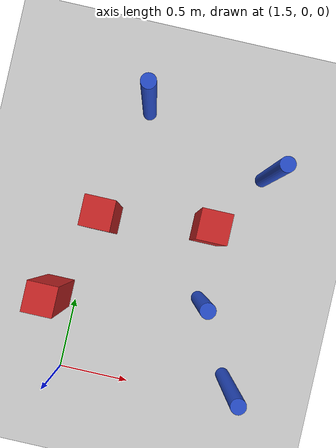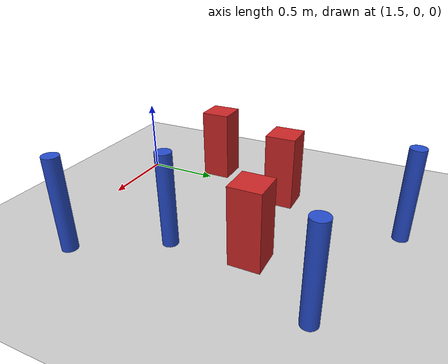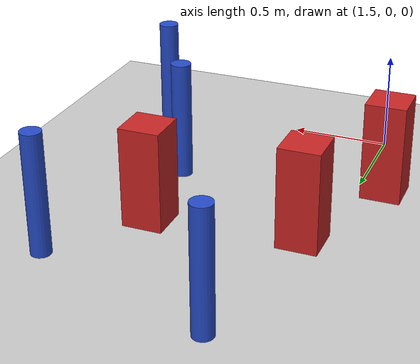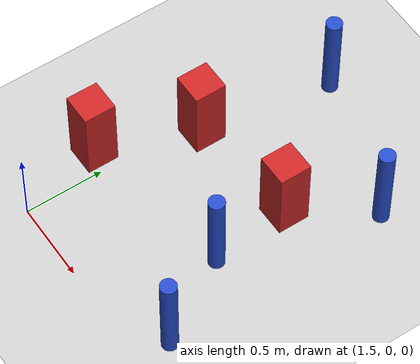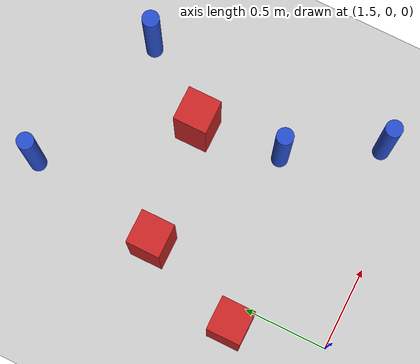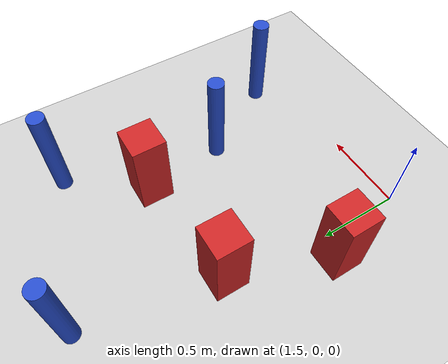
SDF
<sdf version="1.6">
 <world name="default">
  <model name="ground_plane">
   <static>1</static>
   <link name="link">
    <collision name="collision">
     <geometry><plane><normal>0 0 1</normal><size>100 100</size></plane></geometry>
     <surface><friction><ode><mu>100</mu><mu2>50</mu2></ode></friction></surface>
    </collision>
    <visual name="visual">
     <cast_shadows>0</cast_shadows>
     <geometry><plane><normal>0 0 1</normal><size>100 100</size></plane></geometry>
     <material>
      <ambient>1.0 1.0 1.0 1.0</ambient>
      <diffuse>0.8 0.8 0.8 1.0</diffuse>
      <specular>0.01 0.01 0.01 1.000000</specular>
     </material>
    </visual>
   </link>
  </model>
  <model name="square_post_obstacle0">
   <static>true</static>
   <pose>1.59521154931 1.13567530019 8.22691968438e-08 7.2212513382e-06 -7.54495500217e-07 2.29674213826e-05</pose>
   <link name="link">
    <pose>0 0 0.25 0 -0 0</pose>
    <inertial>
     <mass>100</mass>
     <inertia>
      <ixx>0.166667</ixx>
      <ixy>0</ixy>
      <ixz>0</ixz>
      <iyy>0.166667</iyy>
      <iyz>0</iyz>
      <izz>0.166667</izz>
     </inertia>
    </inertial>
    <collision name="collision"><geometry><box><size>.2 .2 .5</size></box></geometry></collision>
    <visual name="visual">
     <geometry><box><size>.2 .2 .5</size></box></geometry>
     <material>
      <script><name>Gazebo/Red</name><uri>file://media/materials/scripts/gazebo.material</uri></script>
     </material>
    </visual>
   </link>
  </model>
  <model name="pole_obstacle0">
   <static>true</static>
   <pose>2.64898419732 1.66031176856 2.88873142074e-08 -9.90536689395e-09 4.60219949e-07 -1.20965994953e-07</pose>
   <link name="link">
    <pose>0 0 0.3 0 -0 0</pose>
    <inertial>
     <mass>1</mass>
     <inertia><ixx>0.145833</ixx><ixy>0</ixy><ixz>0</ixz><iyy>0.145833</iyy><iyz>0</iyz><izz>0.125</izz></inertia>
    </inertial>
    <collision name="collision">
     <geometry><cylinder><radius>0.05</radius><length>.6</length></cylinder></geometry>
    </collision>
    <visual name="visual">
     <geometry><cylinder><radius>0.05</radius><length>.6</length></cylinder></geometry>
     <material>
      <script><name>Gazebo/Blue</name><uri>file://media/materials/scripts/gazebo.material</uri></script>
     </material>
    </visual>
   </link>
  </model>
  <model name="pole_obstacle95">
   <static>true</static>
   <pose>2.3795772232 0.70945702516 2.88873142074e-08 -9.90536689285e-09 4.60219949002e-07 -1.20965994953e-07</pose>
   <link name="link">
    <pose>0 0 0.3 0 -0 0</pose>
    <inertial>
     <mass>1</mass>
     <inertia><ixx>0.145833</ixx><ixy>0</ixy><ixz>0</ixz><iyy>0.145833</iyy><iyz>0</iyz><izz>0.125</izz></inertia>
    </inertial>
    <collision name="collision">
     <geometry><cylinder><radius>0.05</radius><length>.6</length></cylinder></geometry>
    </collision>
    <visual name="visual">
     <geometry><cylinder><radius>0.05</radius><length>.6</length></cylinder></geometry>
     <material>
      <script><name>Gazebo/Blue</name><uri>file://media/materials/scripts/gazebo.material</uri></script>
     </material>
    </visual>
   </link>
  </model>
  <model name="square_post_obstacle119">
   <static>true</static>
   <pose>1.36652664695 0.537661795758 8.22691968438e-08 7.22125133819e-06 -7.54495500217e-07 2.29674213826e-05</pose>
   <link name="link">
    <pose>0 0 0.25 0 -0 0</pose>
    <inertial>
     <mass>100</mass>
     <inertia>
      <ixx>0.166667</ixx>
      <ixy>0</ixy>
      <ixz>0</ixz>
      <iyy>0.166667</iyy>
      <iyz>0</iyz>
      <izz>0.166667</izz>
     </inertia>
    </inertial>
    <collision name="collision"><geometry><box><size>.2 .2 .5</size></box></geometry></collision>
    <visual name="visual">
     <geometry><box><size>.2 .2 .5</size></box></geometry>
     <material>
      <script><name>Gazebo/Red</name><uri>file://media/materials/scripts/gazebo.material</uri></script>
     </material>
    </visual>
   </link>
  </model>
  <model name="square_post_obstacle145">
   <static>true</static>
   <pose>2.32243363316 1.21249501285 8.22691968438e-08 7.2212513382e-06 -7.54495500217e-07 2.29674213826e-05</pose>
   <link name="link">
    <pose>0 0 0.25 0 -0 0</pose>
    <inertial>
     <mass>100</mass>
     <inertia>
      <ixx>0.166667</ixx>
      <ixy>0</ixy>
      <ixz>0</ixz>
      <iyy>0.166667</iyy>
      <iyz>0</iyz>
      <izz>0.166667</izz>
     </inertia>
    </inertial>
    <collision name="collision"><geometry><box><size>.2 .2 .5</size></box></geometry></collision>
    <visual name="visual">
     <geometry><box><size>.2 .2 .5</size></box></geometry>
     <material>
      <script><name>Gazebo/Red</name><uri>file://media/materials/scripts/gazebo.material</uri></script>
     </material>
    </visual>
   </link>
  </model>
  <model name="pole_obstacle188">
   <static>true</static>
   <pose>1.73528651805 1.95897012718 2.88873142074e-08 -9.9053668992e-09 4.60219948987e-07 -1.20965994962e-07</pose>
   <link name="link">
    <pose>0 0 0.3 0 -0 0</pose>
    <inertial>
     <mass>1</mass>
     <inertia><ixx>0.145833</ixx><ixy>0</ixy><ixz>0</ixz><iyy>0.145833</iyy><iyz>0</iyz><izz>0.125</izz></inertia>
    </inertial>
    <collision name="collision">
     <geometry><cylinder><radius>0.05</radius><length>.6</length></cylinder></geometry>
    </collision>
    <visual name="visual">
     <geometry><cylinder><radius>0.05</radius><length>.6</length></cylinder></geometry>
     <material>
      <script><name>Gazebo/Blue</name><uri>file://media/materials/scripts/gazebo.material</uri></script>
     </material>
    </visual>
   </link>
  </model>
  <model name="pole_obstacle212">
   <static>true</static>
   <pose>2.67973200385 0.197890064098 2.88873142074e-08 -9.90536689209e-09 4.60219949004e-07 -1.20965994952e-07</pose>
   <link name="link">
    <pose>0 0 0.3 0 -0 0</pose>
    <inertial>
     <mass>1</mass>
     <inertia><ixx>0.145833</ixx><ixy>0</ixy><ixz>0</ixz><iyy>0.145833</iyy><iyz>0</iyz><izz>0.125</izz></inertia>
    </inertial>
    <collision name="collision">
     <geometry><cylinder><radius>0.05</radius><length>.6</length></cylinder></geometry>
    </collision>
    <visual name="visual">
     <geometry><cylinder><radius>0.05</radius><length>.6</length></cylinder></geometry>
     <material>
      <script><name>Gazebo/Blue</name><uri>file://media/materials/scripts/gazebo.material</uri></script>
     </material>
    </visual>
   </link>
  </model>
 </world>
</sdf>
